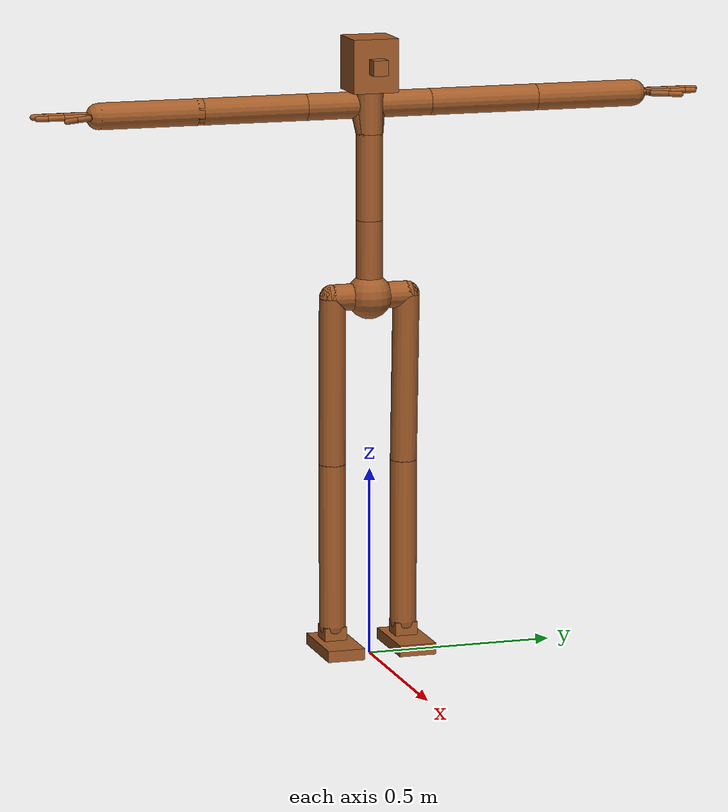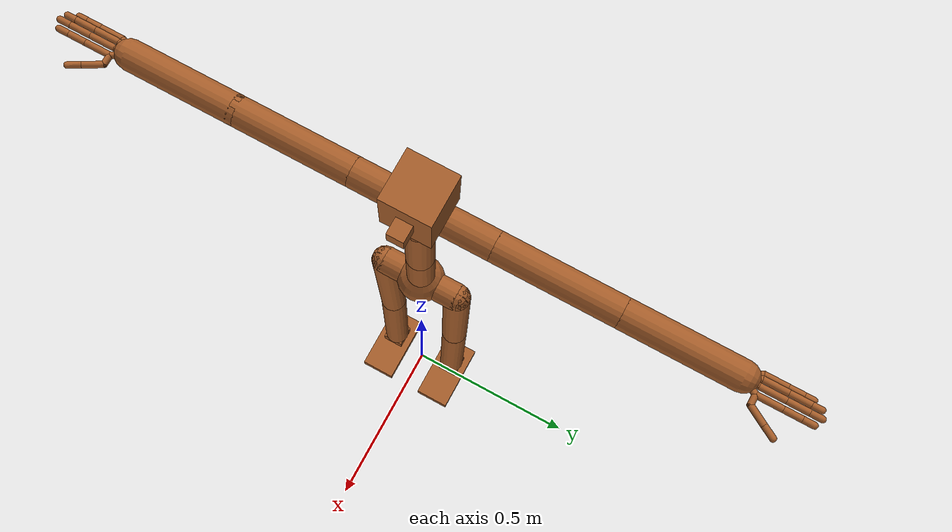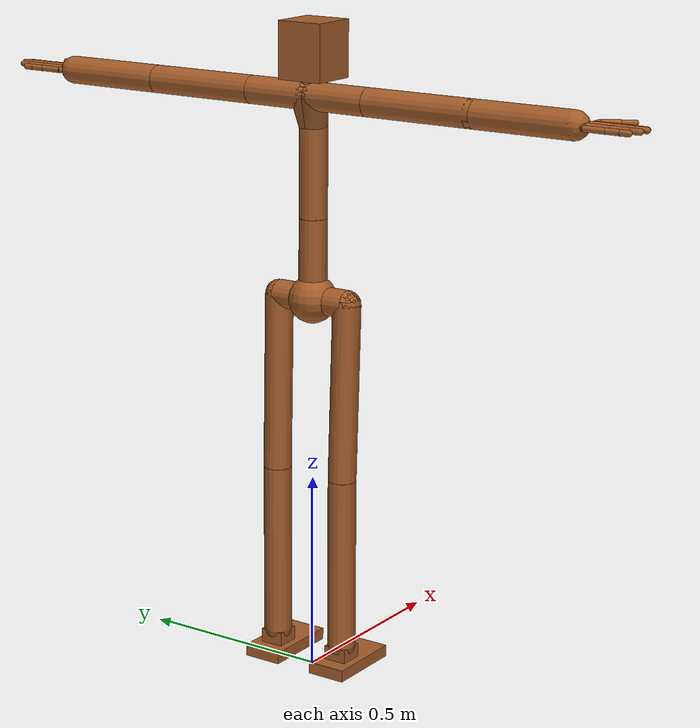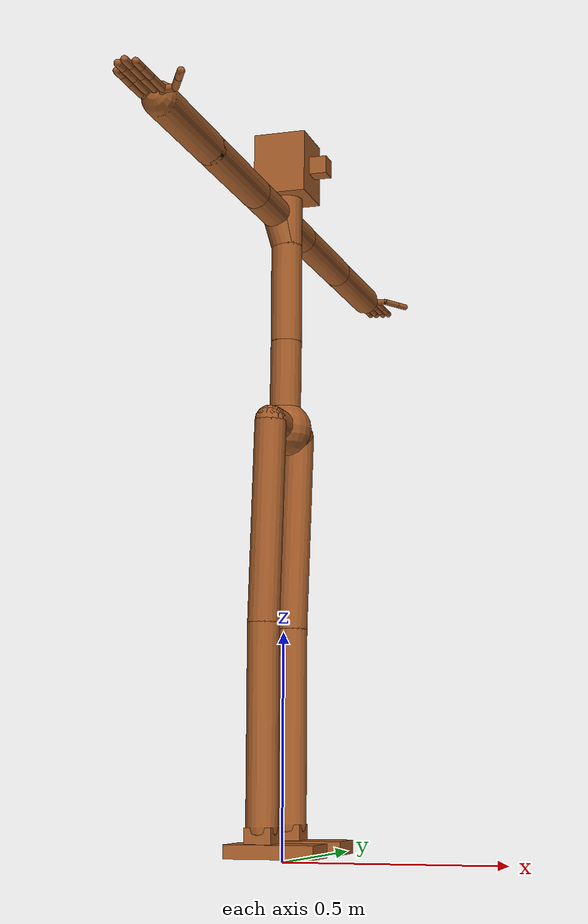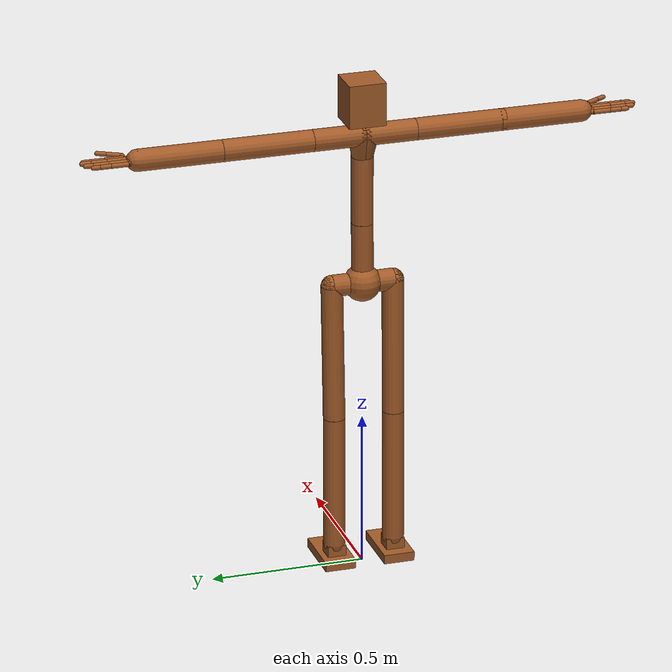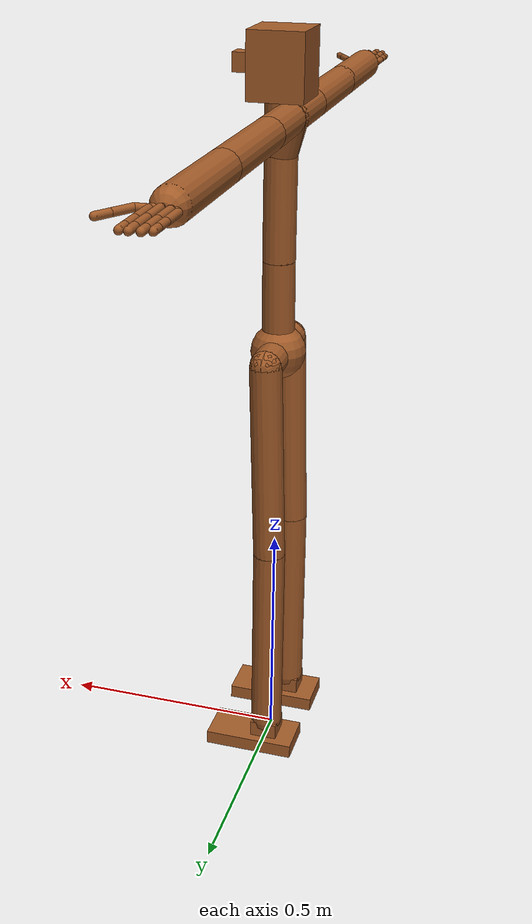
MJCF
<mujoco model="common-rig-h">
    <!--
            Robot Intelligence Lab
            Common Rig (Custom Humanoid) model

            @ Contact us : taemoon-jeong (motor_moon94@korea.ac.kr)
    -->
    <compiler coordinate="local" inertiafromgeom="true" angle="radian"/>

    <default>
        <joint limited="true" damping="1" armature="0"/>
        <geom contype="1" condim="3" margin="0.001" solref=".02 1" solimp=".8 .8 .01" material="matgeom"/>
        <motor ctrlrange="-.4 .4" ctrllimited="true"/>

        <default class="hand">
        	<joint limited="true"/>
            <position ctrllimited="true" kp="1"/>
		</default>
    </default>

    <option timestep="0.005" iterations="50" tolerance="1e-10" solver="Newton" jacobian="dense" cone="pyramidal"/>
    <size nconmax="50" njmax="200" nstack="10000"/>

    <visual>
        <map force="0.1" zfar="30"/>
        <rgba haze="0.15 0.25 0.35 1"/>
        <quality shadowsize="2048"/>
        <global offwidth="800" offheight="800"/>
    </visual>

    <asset>
        <texture name="texgeom" type="cube" builtin="flat" mark="cross" width="127" height="1278"
            rgb1="0.8 0.6 0.4" rgb2="0.8 0.6 0.4" markrgb="1 1 1" random="0.01"/>
        <material name="matgeom" texture="texgeom" texuniform="true" rgba="0.8 0.6 0.4 1.0"/>
    </asset>

    <worldbody>

        <body name="base" pos="0 0 0.960348">
            <freejoint name="base"/>
            <geom name="base" type="sphere" pos="0 0 0" size="0.06"/>
            <body name="torso" pos="0 0 0" euler="0 0 0">
                <geom name="root2spine" type="capsule" fromto="0 0 0 0.00194939 0 0.2017038"  size="0.035" density="2226"/>
                <joint name="root1" type="hinge" pos="0 0 0" axis="1 0 0" range="-0.872222 0.872222" damping="60" stiffness="600" armature="0.02" />
                <joint name="root2" type="hinge" pos="0 0 0" axis="0 1 0" range="-0.523333 2.616667" damping="60" stiffness="600" armature="0.02" />
                <joint name="root3" type="hinge" pos="0 0 0" axis="0 0 1" range="-1.395556 1.395556" damping="60" stiffness="600" armature="0.02" />
                <body name="spine" pos="0.00194939 0 0.2017038" euler="0 0 0">
                    <geom name="spine2neck" type="capsule" fromto="0 0 0 0 0 0.2263381"  size="0.035" density="2226"/>
                    <joint name="spine" type="hinge" pos="0 0 0" axis="0 1 0" range="-0.436111 0.785" damping="60" stiffness="600" armature="0.02" />
                    <joint name="spinex" type="hinge" pos="0 0 0" axis="1 0 0" range="-0.436111 0.785" damping="60" stiffness="600" armature="0.02"/>
                    <joint name="spinez" type="hinge" pos="0 0 0" axis="0 0 1" range="-0.436111 0.785" damping="60" stiffness="600" armature="0.02"/>
                    <body name="neck" pos="0 0 0.2263381" euler="0 0 0">
                        <geom name="neck2rclavicle" type="capsule" fromto="0 0 0 -0.0182683 -0.0119726 0.0730251"  size="0.035"/>
                        <geom name="neck2lclavicle" type="capsule" fromto="0 0 0 -0.0182683 0.0119726 0.0730251"  size="0.035"/>
                        <geom name="neck2head" type="capsule" fromto="0 0 0 0 0 0.1817364"  size="0.035"/>
                        <body name="right_clavicle" pos="-0.0182683 -0.0119726 0.0730251" euler="0 0 0">
                            <geom name="rclavicle2rshoulder" type="capsule" fromto="0 0 0 0 -0.155151 0"  size="0.035"/>
                            <joint name="rc" type="hinge" pos="0 0 0" axis="1 0 0" range="-0.261793 0.261793" damping="60" stiffness="600" armature="0.02"/>
                            <body name="right_shoulder" pos="0 -0.155151 0" euler="0 0 0">
                                <geom name="rshoulder2relbow" type="capsule" fromto="0 0 0 0 -0.291422 0"  size="0.035"/>
                                <joint name="rs1" type="hinge" pos="0 0 0" axis="1 0 0" range="-2.006111 2.006111" stiffness="200" damping="20" armature="0.0068" />
                                <joint name="rs2" type="hinge" pos="0 0 0" axis="0 0 1" range="-1.57 3.141592" stiffness="200" damping="20" armature="0.0051" />
                                <joint name="rs3" type="hinge" pos="0 0 0" axis="0 1 0" range="-3.141592 3.141592" stiffness="200" damping="20" armature="0.0051"/>
                                <body name="right_elbow" pos="0 -0.2768 0" euler="0 0 0">
                                    <geom name="relbow2rwrist" type="capsule" fromto="0 0 0 0 -0.270311 0"  size="0.035"/>
                                    <joint name="re" type="hinge" pos="0 0 0" axis="0 0 1" range="0.01 2.61666666667" stiffness="150" damping="15" armature="0.0028"/>
                                    <body name="right_wrist" pos="0 -0.270311 0" euler="0 0 0">
                                        <geom name="rhand2rmetatwo" type="capsule" fromto="0 0 0 0.0227850 -0.0363963 0.0030774" size="0.0075"/>
                                        <geom name="rhand2rmetathree" type="capsule" fromto="0 0 0 0.0043230 -0.0354591 0.0053477" size="0.0075"/>
                                        <geom name="rhand2rmetafour" type="capsule" fromto="0 0 0 -0.0121556 -0.0357189 0.0033833" size="0.0075"/>
                                        <geom name="rhand2rmetafive" type="capsule" fromto="0 0 0 -0.023199 -0.0339833 -0.0007049" size="0.0075"/>
                                        <joint name="rw1" type="hinge" pos="0 0 0" axis="0 1 0" range="-3.141592 3.141592" damping="5" stiffness="50" armature="0.02"/>
                                        <joint name="rw2" type="hinge" pos="0 0 0" axis="0 0 1" range="-3.141592 3.141592" damping="5" stiffness="50" armature="0.02"/>
                                        <joint name="rw3" type="hinge" pos="0 0 0" axis="1 0 0" range="-3.141592 3.141592" damping="5" stiffness="50" armature="0.02"/>
                                        <body name="rh_meta_2" pos="0.0227850 -0.0363963 0.0030774" euler="0 0 0">
                                            <geom name="rmetatwo2rproxtwo" type="capsule" fromto="0 0 0 0 -0.0605478 0" size="0.0075"/>
                                            <joint name="rh_2_meta" type="hinge" pos="0 0 0" axis="1 0 0" range="0.01 1.570796" damping="5" stiffness="50" armature="0.02"/>
                                                <body name="rh_prox_2" pos="0 -0.0605478 0" euler="0 0 0">
                                                    <geom name="rproxtwo2rmedtwo" type="capsule" fromto="0 0 0 0 -0.0420938 0" size="0.0075"/>
                                                    <joint name="rh_2_prox" type="hinge" pos="0 0 0" axis="1 0 0" range="0.01 1.570796" damping="5" stiffness="50" armature="0.02"/>
                                                        <body name="rh_med_2" pos="0 -0.0420938 0" euler="0 0 0">
                                                            <geom name="rmedtwo2rdisttwo" type="capsule" fromto="0 0 0 0 -0.0261978 0" size="0.0075"/>
                                                            <joint name="rh_2_med" type="hinge" pos="0 0 0" axis="1 0 0" range="0.01 1.570796" damping="5" stiffness="50" armature="0.02"/>
                                                                <body name="rh_dist_2" pos="0 -0.0261978 0" euler="0 0 0"/>
                                                        </body>
                                                </body>
                                        </body>
                                        <body name="rh_abd_2" pos="0.0227850 -0.0363963 0.0030774" euler="0 0 0">
                                            <joint name="rh_2_abd" type="hinge" pos="0 0 0" axis="0 1 0" range="0.01 1.570796" damping="5" stiffness="50" armature="0.02"/>
                                                <geom name="rmetatwo2rmetaone" type="capsule" fromto="0 0 0 0.023986 0 0" size="0.0075"/>
                                                <body name="rh_meta_1" pos="0.023986 0 0" euler="0 0 0.523599">
                                                    <geom name="rmetaone2rproxone" type="capsule" fromto="0 0 0 0 -0.0472361 0" size="0.0075"/>
                                                    <joint name="rh_1_meta" type="hinge" pos="0 0 0" axis="0 0 1" range="-1.570796 -0.01" damping="5" stiffness="50" armature="0.02"/>
                                                        <body name="rh_prox_1" pos="0 -0.0472361 0" euler="0 0 0">
                                                            <geom name="rproxone2rdistone" type="capsule" fromto="0 0 0 0 -0.0310265 0" size="0.0075"/>
                                                            <joint name="rh_1_prox" type="hinge" pos="0 0 0" axis="0 0 1" range="-1.047197 -0.01" damping="5" stiffness="50" armature="0.02"/>
                                                                <body name="rh_dist_1" pos="0 -0.0310265 0" euler="0 0 0"/>
                                                        </body>
                                                </body>
                                        </body>
                                        <body name="rh_meta_3" pos="0.0043230 -0.0354591 0.0053477" euler="0 0 0">
                                            <geom name="rmetathree2rproxthree" type="capsule" fromto="0 0 0 0 -0.0599018 0" size="0.0075"/>
                                            <joint name="rh_3_meta" type="hinge" pos="0 0 0" axis="1 0 0" range="0.01 1.570796" damping="5" stiffness="50" armature="0.02"/>
                                                <body name="rh_prox_3" pos="0 -0.0599018 0" euler="0 0 0">
                                                    <geom name="rproxthree2rmedthree" type="capsule" fromto="0 0 0 0 -0.0507048 0" size="0.0075"/>
                                                    <joint name="rh_3_prox" type="hinge" pos="0 0 0" axis="1 0 0" range="0.01 1.570796" damping="5" stiffness="50" armature="0.02"/>
                                                        <body name="rh_med_3" pos="0 -0.0507048 0" euler="0 0 0">
                                                            <geom name="rmedthree2rdistthree" type="capsule" fromto="0 0 0 0 -0.0275057 0" size="0.0075"/>
                                                            <joint name="rh_3_med" type="hinge" pos="0 0 0" axis="1 0 0" range="0.01 1.570796" damping="5" stiffness="50" armature="0.02"/>
                                                                <body name="rh_dist_3" pos="0 -0.0275057 0" euler="0 0 0"/>
                                                        </body>
                                                </body>
                                        </body>
                                        <body name="rh_meta_4" pos="-0.0121556 -0.0357189 0.0033833" euler="0 0 0">
                                            <geom name="rmetafour2rproxfour" type="capsule" fromto="0 0 0 0 -0.0578554 0" size="0.0075"/>
                                            <joint name="rh_4_meta" type="hinge" pos="0 0 0" axis="1 0 0" range="0.01 1.570796" damping="5" stiffness="50" armature="0.02"/>
                                                <body name="rh_prox_4" pos="0 -0.0578554 0" euler="0 0 0">
                                                    <geom name="rproxfour2rmedfour" type="capsule" fromto="0 0 0 0 -0.0495246 0" size="0.0075"/>
                                                    <joint name="rh_4_prox" type="hinge" pos="0 0 0" axis="1 0 0" range="0.01 1.570796" damping="5" stiffness="50" armature="0.02"/>
                                                        <body name="rh_med_4" pos="0 -0.0495246 0" euler="0 0 0">
                                                            <geom name="rmedfour2rdistfour" type="capsule" fromto="0 0 0 0 -0.0226809 0" size="0.0075"/>
                                                            <joint name="rh_4_med" type="hinge" pos="0 0 0" axis="1 0 0" range="0.01 1.570796" damping="5" stiffness="50" armature="0.02"/>
                                                                <body name="rh_dist_4" pos="0 -0.0226809 0" euler="0 0 0"/>
                                                        </body>
                                                </body>
                                        </body>
                                        <body name="rh_meta_5" pos="-0.023199 -0.0339833 -0.0007049" euler="0 0 0">
                                            <geom name="rmetafive2rproxfive" type="capsule" fromto="0 0 0 0 -0.0542941 0" size="0.0075 "/>
                                            <joint name="rh_5_meta" type="hinge" pos="0 0 0" axis="1 0 0" range="0.01 1.570796" damping="5" stiffness="50" armature="0.02"/>
                                                <body name="rh_prox_5" pos="0 -0.0542941 0" euler="0 0 0">
                                                    <geom name="rproxfive2rmedfive" type="capsule" fromto="0 0 0 0 -0.0350421 0" size="0.0075"/>
                                                    <joint name="rh_5_prox" type="hinge" pos="0 0 0" axis="1 0 0" range="0.01 1.570796" damping="5" stiffness="50" armature="0.02"/>
                                                        <body name="rh_med_5" pos="0 -0.0350421 0" euler="0 0 0">
                                                            <geom name="rmedfive2rdistfive" type="capsule" fromto="0 0 0 0 -0.0211006 0" size="0.0075"/>
                                                            <joint name="rh_5_med" type="hinge" pos="0 0 0" axis="1 0 0" range="0.01 1.570796" damping="5" stiffness="50" armature="0.02"/>
                                                                <body name="rh_dist_5" pos="0 -0.0211006 0" euler="0 0 0"/>
                                                        </body>
                                                </body>
                                        </body>
                                    </body>
                                </body>
                            </body>
                        </body>
                        <body name="left_clavicle" pos="-0.0182683 0.0119726 0.0730251" euler="0 0 0">
                            <geom name="lclavicle2lshoulder" type="capsule" fromto="0 0 0 0 0.155151 0"  size="0.035"/>
                            <joint name="lc" type="hinge" pos="0 0 0" axis="1 0 0" range="-0.261793 0.261793" damping="60" stiffness="600" armature="0.02"/>
                            <body name="left_shoulder" pos="0 0.155151 0" euler="0 0 0">
                                <geom name="lshoulder2lelbow" type="capsule" fromto="0 0 0 0 0.291422 0"  size="0.035" />
                                <joint name="ls1" type="hinge" pos="0 0 0" axis="1 0 0" range="-2.006111 2.006111" stiffness="200" damping="20" armature="0.0068" />
                                <joint name="ls2" type="hinge" pos="0 0 0" axis="0 0 1" range="-3.141592 1.57" stiffness="200" damping="20" armature="0.0051" />
                                <joint name="ls3" type="hinge" pos="0 0 0" axis="0 1 0" range="-3.141592 3.141592" stiffness="200" damping="20" armature="0.0051" />
                                <body name="left_elbow" pos="0 0.291422 0" euler="0 0 0">
                                    <geom name="lelbow2lwrist" type="capsule" fromto="0 0 0 0 0.270311 0"  size="0.035" />
                                    <joint name="le" type="hinge" pos="0 0 0" axis="0 0 1" range="-2.61666666667 -0.01" stiffness="150" damping="15" armature="0.0028" />
                                    <body name="left_wrist" pos="0 0.270311 0" euler="0 0 0">
                                        <geom name="lhand2lmetatwo" type="capsule" fromto="0 0 0 0.0227850 0.0363963 0.0030774" size="0.0075"/>
                                        <geom name="lhand2lmetathree" type="capsule" fromto="0 0 0 0.0043230 0.0354591 0.0053477" size="0.0075"/>
                                        <geom name="lhand2lmetafour" type="capsule" fromto="0 0 0 -0.0121556 0.0357189 0.0033833" size="0.0075"/>
                                        <geom name="lhand2lmetafive" type="capsule" fromto="0 0 0 -0.023199 0.0339833 -0.0007049" size="0.0075"/>
                                        <joint name="lw1" type="hinge" pos="0 0 0" axis="0 1 0" range="-3.141592 3.141592" damping="5" stiffness="50" armature="0.02" />
                                        <joint name="lw2" type="hinge" pos="0 0 0" axis="0 0 1" range="-3.141592 3.141592" damping="5" stiffness="50" armature="0.02" />
                                        <joint name="lw3" type="hinge" pos="0 0 0" axis="1 0 0" range="-3.141592 3.141592" damping="5" stiffness="50" armature="0.02" />
                                        <body name="lh_meta_2" pos="0.0227850 0.0363963 0.0030774" euler="0 0 0">
                                            <geom name="lmetatwo2lproxtwo" type="capsule" fromto="0 0 0 0 0.0605478 0" size="0.0075"/>
                                            <joint name="lh_2_meta" type="hinge" pos="0 0 0" axis="1 0 0" range="-1.570796 -0.01" damping="5" stiffness="50" armature="0.02"/>
                                                <body name="lh_prox_2" pos="0 0.0605478 0" euler="0 0 0">
                                                    <geom name="lproxtwo2lmedtwo" type="capsule" fromto="0 0 0 0 0.0420938 0" size="0.0075"/>
                                                    <joint name="lh_2_prox" type="hinge" pos="0 0 0" axis="1 0 0" range="-1.570796 -0.01" damping="5" stiffness="50" armature="0.02"/>
                                                        <body name="lh_med_2" pos="0 0.0420938 0" euler="0 0 0">
                                                            <geom name="lmedtwo2ldisttwo" type="capsule" fromto="0 0 0 0 0.0261978 0" size="0.0075"/>
                                                            <joint name="lh_2_med" type="hinge" pos="0 0 0" axis="1 0 0" range="-1.570796 -0.01" damping="5" stiffness="50" armature="0.02"/>
                                                                <body name="lh_dist_2" pos="0 0.0261978 0" euler="0 0 0"/>
                                                        </body>
                                                </body>
                                        </body>
                                        <body name="lh_abd_2" pos="0.0227850 0.0363963 0.0030774" euler="0 0 0">
                                            <joint name="lh_2_abd" type="hinge" pos="0 0 0" axis="0 1 0" range="0.01 1.570796" damping="5" stiffness="50" armature="0.02"/>
                                                <geom name="lmetatwo2lmetaone" type="capsule" fromto="0 0 0 0.023986 0 0" size="0.0075"/>
                                                <body name="lh_meta_1" pos="0.023986 0 0" euler="0 0 -0.523599">
                                                    <geom name="lmetaone2lproxone" type="capsule" fromto="0 0 0 0 0.0472361 0" size="0.0075"/>
                                                    <joint name="lh_1_meta" type="hinge" pos="0 0 0" axis="0 0 1" range="0.01 1.570796" damping="5" stiffness="50" armature="0.02"/>
                                                        <body name="lh_prox_1" pos="0 0.0472361 0" euler="0 0 0">
                                                            <geom name="lproxone2ldistone" type="capsule" fromto="0 0 0 0 0.0310265 0" size="0.0075"/>
                                                            <joint name="lh_1_prox" type="hinge" pos="0 0 0" axis="0 0 1" range="0.01 1.047197" damping="5" stiffness="50" armature="0.02"/>
                                                                <body name="lh_dist_1" pos="0 0.0310265 0" euler="0 0 0"/>
                                                        </body>
                                                </body>
                                        </body>
                                        <body name="lh_meta_3" pos="0.0043230 0.0354591 0.0053477" euler="0 0 0">
                                            <geom name="lmetathree2lproxthree" type="capsule" fromto="0 0 0 0 0.0599018 0" size="0.0075"/>
                                            <joint name="lh_3_meta" type="hinge" pos="0 0 0" axis="1 0 0" range="-1.570796 -0.01" damping="5" stiffness="50" armature="0.02"/>
                                                <body name="lh_prox_3" pos="0 0.0599018 0" euler="0 0 0">
                                                    <geom name="lproxthree2lmedthree" type="capsule" fromto="0 0 0 0 0.0507048 0" size="0.0075"/>
                                                    <joint name="lh_3_prox" type="hinge" pos="0 0 0" axis="1 0 0" range="-1.570796 -0.01" damping="5" stiffness="50" armature="0.02"/>
                                                        <body name="lh_med_3" pos="0 0.0507048 0" euler="0 0 0">
                                                            <geom name="lmedthree2ldistthree" type="capsule" fromto="0 0 0 0 0.0275057 0" size="0.0075"/>
                                                            <joint name="lh_3_med" type="hinge" pos="0 0 0" axis="1 0 0" range="-1.570796 -0.01" damping="5" stiffness="50" armature="0.02"/>
                                                                <body name="lh_dist_3" pos="0 0.0275057 0" euler="0 0 0"/>
                                                        </body>
                                                </body>
                                        </body>
                                        <body name="lh_meta_4" pos="-0.0121556 0.0357189 0.0033833" euler="0 0 0">
                                            <geom name="lmetafour2lproxfour" type="capsule" fromto="0 0 0 0 0.0578554 0" size="0.0075"/>
                                            <joint name="lh_4_meta" type="hinge" pos="0 0 0" axis="1 0 0" range="-1.570796 -0.01" damping="5" stiffness="50" armature="0.02"/>
                                                <body name="lh_prox_4" pos="0 0.0578554 0" euler="0 0 0">
                                                    <geom name="lproxfour2lmedfour" type="capsule" fromto="0 0 0 0 0.0495246 0" size="0.0075"/>
                                                    <joint name="lh_4_prox" type="hinge" pos="0 0 0" axis="1 0 0" range="-1.570796 -0.01" damping="5" stiffness="50" armature="0.02"/>
                                                        <body name="lh_med_4" pos="0 0.0495246 0" euler="0 0 0">
                                                            <geom name="lmedfour2ldistfour" type="capsule" fromto="0 0 0 0 0.0226809 0" size="0.0075"/>
                                                            <joint name="lh_4_med" type="hinge" pos="0 0 0" axis="1 0 0" range="-1.570796 -0.01" damping="5" stiffness="50" armature="0.02"/>
                                                                <body name="lh_dist_4" pos="0 0.0226809 0" euler="0 0 0"/>
                                                        </body>
                                                </body>
                                        </body>
                                        <body name="lh_meta_5" pos="-0.023199 0.0339833 -0.0007049" euler="0 0 0">
                                            <geom name="lmetafive2lproxfive" type="capsule" fromto="0 0 0 0 0.0542941 0" size="0.0075"/>
                                            <joint name="lh_5_meta" type="hinge" pos="0 0 0" axis="1 0 0" range="-1.570796 -0.01" damping="5" stiffness="50" armature="0.02"/>
                                                <body name="lh_prox_5" pos="0 0.0542941 0" euler="0 0 0">
                                                    <geom name="lproxfive2lmedfive" type="capsule" fromto="0 0 0 0 0.0350421 0" size="0.0075"/>
                                                    <joint name="lh_5_prox" type="hinge" pos="0 0 0" axis="1 0 0" range="-1.570796 -0.01" damping="5" stiffness="50" armature="0.02"/>
                                                        <body name="lh_med_5" pos="0 0.0350421 0" euler="0 0 0">
                                                            <geom name="lmedfive2ldistfive" type="capsule" fromto="0 0 0 0 0.0211006 0" size="0.0075"/>
                                                            <joint name="lh_5_med" type="hinge" pos="0 0 0" axis="1 0 0" range="-1.570796 -0.01" damping="5" stiffness="50" armature="0.02"/>
                                                                <body name="lh_dist_5" pos="0 0.0211006 0" euler="0 0 0"/>
                                                        </body>
                                                </body>
                                        </body>
                                    </body>
                                </body>
                            </body>
                        </body>
                        <body name="head" pos="0 0 0.1817364" euler="0 0 0">
                            <geom name="head" type="box" pos="0 0 0" size="0.06 0.06 0.07" />
                            <geom name="nose" type="box" pos="0.05 0 0" size="0.05 0.02 0.02" />
                            <joint name="head1" type="hinge" pos="0 0 0" axis="1 0 0" range="-1.57 1.57" damping="5" stiffness="50" armature="0.02" />
                            <joint name="head2" type="hinge" pos="0 0 0" axis="0 1 0" range="-1.57 1.57" damping="5" stiffness="50" armature="0.02" />
                            <joint name="head3" type="hinge" pos="0 0 0" axis="0 0 1" range="-1.57 1.57" damping="5" stiffness="50" armature="0.02" />
                        </body>
                    </body>
                </body>
            </body>
            <body name="right_leg" pos="0 0 0" euler="0 0 0">
                <geom name="base2rpelvis" type="capsule" fromto="0 0 0 0 -0.100371 0"  size="0.035" />
                <body name="right_pelvis" pos="0 -0.100371 0" euler="0 0 0">
                    <geom name="rpelvis2rknee" type="capsule" fromto="0 0 0 -0.013579 0.00242305 -0.445198"  size="0.035" />
                    <joint name="rp1" type="hinge" pos="0 0 0" axis="1 0 0" range="-1.57 0.785" damping="30" stiffness="900" armature="0.01" />
                    <joint name="rp2" type="hinge" pos="0 0 0" axis="0 1 0" range="-3.141592 2.267778" damping="30" stiffness="900" armature="0.01" />
                    <joint name="rp3" type="hinge" pos="0 0 0" axis="0 0 1" range="-0.52333333333 0.52333333333" damping="30" stiffness="900" armature="0.01" />
                    <body name="right_knee" pos="-0.013579 0.00242305 -0.445198" euler="0 0 0">
                        <geom name="rknee2rankle" type="capsule" fromto="0 0 0 0 0 -0.436307"  size="0.035" />
                        <joint name="rk" type="hinge" pos="0 0 0" axis="0 1 0" range="0.0175 2.0944" damping="30" stiffness="900" armature="0.0060" />
                        <body name="right_ankle" pos="0 0 -0.436307" euler="0 0 0">
                            <geom name="rankle" type="box" pos="0 0 -0.025" size="0.03 0.03 0.025" />
                            <geom name="rfoot" type="box" pos="0.03 0 -0.05" size="0.1 0.05 0.015" />
                            <joint name="ra1" type="hinge" pos="0 0 0" axis="0 1 0" range="-1.57 0.697778" stiffness="600" damping="20" armature="0.0008" />
                            <joint name="ra2" type="hinge" pos="0 0 0" axis="1 0 0" range="-0.261667 0.261667" stiffness="600" damping="20" armature="0.0006" />
                            <joint name="ra3" type="hinge" pos="0 0 0" axis="0 0 1" range="-0.52333333333 0.52333333333" stiffness="600" damping="20" armature="0.0006" />
                        </body>
                    </body>
                </body>
            </body>
            <body name="left_leg" pos="0 0 0" euler="0 0 0">
                <geom name="base2lpelvis" type="capsule" fromto="0 0 0 0 0.100371 0"  size="0.035" />
                <body name="left_pelvis" pos="0 0.100371 0" euler="0 0 0">
                    <geom name="lpelvis2lknee" type="capsule" fromto="0 0 0 -0.013579 -0.00242347 -0.445198"  size="0.035" />
                    <joint name="lp1" type="hinge" pos="0 0 0" axis="1 0 0" range="-0.785 1.57" damping="30" stiffness="900" armature="0.01" />
                    <joint name="lp2" type="hinge" pos="0 0 0" axis="0 1 0" range="-3.141592 2.267778" damping="30" stiffness="900" armature="0.01" />
                    <joint name="lp3" type="hinge" pos="0 0 0" axis="0 0 1" range="-0.52333333333 0.52333333333" damping="30" stiffness="900" armature="0.01" />
                    <body name="left_knee" pos="-0.013579 -0.00242347 -0.445198" euler="0 0 0">
                        <geom name="lknee2lankle" type="capsule" fromto="0 0 0 0 0 -0.436307"  size="0.035" />
                        <joint name="lk" type="hinge" pos="0 0 0" axis="0 1 0" range="0.0175 2.0944" damping="30" stiffness="900" armature="0.0060" />
                        <body name="left_ankle" pos="0 0 -0.436307" euler="0 0 0">
                            <geom name="lankle" type="box" pos="0 0 -0.025" size="0.03 0.03 0.025" />
                            <geom name="lfoot" type="box" pos="0.03 0 -0.05" size="0.1 0.05 0.015" />
                            <joint name="la1" type="hinge" pos="0 0 0" axis="0 1 0" range="-1.57 0.697778" stiffness="600" damping="20" armature="0.0008" />
                            <joint name="la2" type="hinge" pos="0 0 0" axis="1 0 0" range="-0.261667 0.261667" stiffness="600" damping="20" armature="0.0006" />
                            <joint name="la3" type="hinge" pos="0 0 0" axis="0 0 1" range="-0.52333333333 0.52333333333" stiffness="600" damping="20" armature="0.0006" />
                        </body>
                    </body>
                </body>
            </body>
        </body>
    </worldbody>

    <actuator>
        <motor name="root1"       gear="200" joint="root1" />
        <motor name="root2"       gear="200" joint="root2" />
        <motor name="root3"       gear="200" joint="root3" />
        <motor name="spine"       gear="200" joint="spine" />
        <motor name="rs1"         gear="100" joint="rs1" />
        <motor name="rs2"         gear="100" joint="rs2" />
        <motor name="rs3"         gear="100" joint="rs3" />
        <motor name="re"          gear="200" joint="re" />
        <motor name="rw1"         gear="100" joint="rw1" />
        <motor name="rw2"         gear="100" joint="rw2" />
        <motor name="rw3"         gear="100" joint="rw3" />
        <motor name="ls1"         gear="100" joint="ls1" />
        <motor name="ls2"         gear="100" joint="ls2" />
        <motor name="ls3"         gear="100" joint="ls3" />
        <motor name="le"          gear="200" joint="le" />
        <motor name="lw1"         gear="100" joint="lw1" />
        <motor name="lw2"         gear="100" joint="lw2" />
        <motor name="lw3"         gear="100" joint="lw3" />
        <motor name="rp1"         gear="600" joint="rp1" />
        <motor name="rp2"         gear="200" joint="rp2" />
        <motor name="rp3"         gear="200" joint="rp3" />
        <motor name="rk"          gear="400" joint="rk" />
        <motor name="ra1"         gear="100" joint="ra1" />
        <motor name="ra2"         gear="100" joint="ra2" />
        <motor name="ra3"         gear="100" joint="ra3" />
        <motor name="lp1"         gear="600" joint="lp1" />
        <motor name="lp2"         gear="200" joint="lp2" />
        <motor name="lp3"         gear="200" joint="lp3" />
        <motor name="lk"          gear="400" joint="lk" />
        <motor name="la1"         gear="100" joint="la1" />
        <motor name="la2"         gear="100" joint="la2" />
        <motor name="la3"         gear="100" joint="la3" />
        <motor name="head1"       gear="200" joint="head1" />
        <motor name="head2"       gear="200" joint="head2" />
        <motor name="head3"       gear="200" joint="head3" />

        <motor name="rc"         gear="100" joint="rc" />
        <motor name="lc"         gear="100" joint="lc" />

        <!-- right hand -->
        <position name="rh_1_meta"  class="hand"  joint="rh_1_meta"  ctrlrange="0 180"/>
        <position name="rh_2_abd"   class="hand"  joint="rh_2_abd"   ctrlrange="0 180"/>
        <position name="rh_2_prox"  class="hand"  joint="rh_2_prox"  ctrlrange="0 180"/>
        <position name="rh_3_prox"  class="hand"  joint="rh_3_prox"  ctrlrange="0 180"/>
        <position name="rh_4_prox"  class="hand"  joint="rh_4_prox"  ctrlrange="0 180"/>
        <position name="rh_5_prox"  class="hand"  joint="rh_5_prox"  ctrlrange="0 180"/>

        <!-- left hand -->
        <position name="lh_1_meta"  class="hand"  joint="lh_1_meta"  ctrlrange="-180 0"/>
        <position name="lh_2_abd"   class="hand"  joint="lh_2_abd"   ctrlrange="-180 0"/>
        <position name="lh_2_prox"  class="hand"  joint="lh_2_prox"  ctrlrange="-180 0"/>
        <position name="lh_3_prox"  class="hand"  joint="lh_3_prox"  ctrlrange="-180 0"/>
        <position name="lh_4_prox"  class="hand"  joint="lh_4_prox"  ctrlrange="-180 0"/>
        <position name="lh_5_prox"  class="hand"  joint="lh_5_prox"  ctrlrange="-180 0"/>

    </actuator>

    <!-- exclude -->
    <contact>
        <exclude body1="neck" body2="right_shoulder"/>
        <exclude body1="spine" body2="right_shoulder"/>
        <exclude body1="right_shoulder" body2="right_elbow"/>
        <exclude body1="right_elbow" body2="right_wrist"/>

        <exclude body1="neck" body2="left_shoulder"/>
        <exclude body1="spine" body2="left_shoulder"/>
        <exclude body1="left_shoulder" body2="left_elbow"/>
        <exclude body1="left_elbow" body2="left_wrist"/>

        <exclude body1="neck" body2="spine"/>
        <exclude body1="spine" body2="torso"/>
        <exclude body1="torso" body2="base"/>

        <exclude body1="torso" body2="right_pelvis"/>
        <exclude body1="right_leg" body2="base"/>
        <exclude body1="right_leg" body2="torso"/>
        <exclude body1="right_leg" body2="right_pelvis"/>
        <exclude body1="right_pelvis" body2="right_knee"/>
        <exclude body1="right_knee" body2="right_ankle"/>

        <exclude body1="right_leg" body2="left_leg"/>

        <exclude body1="torso" body2="left_pelvis"/>
        <exclude body1="left_leg" body2="base"/>
        <exclude body1="left_leg" body2="torso"/>
        <exclude body1="left_leg" body2="left_pelvis"/>
        <exclude body1="left_pelvis" body2="left_knee"/>
        <exclude body1="left_knee" body2="left_ankle"/>

        <exclude body1="right_elbow" body2="rh_meta_1"/>
        <exclude body1="right_elbow" body2="rh_meta_2"/>
        <exclude body1="right_elbow" body2="rh_prox_3"/>

        <exclude body1="right_wrist" body2="rh_meta_2"/>
        <exclude body1="right_wrist" body2="rh_meta_3"/>
        <exclude body1="right_wrist" body2="rh_meta_4"/>
        <exclude body1="right_wrist" body2="rh_meta_5"/>
        <exclude body1="rh_meta_2" body2="rh_meta_1"/>

        <exclude body1="rh_meta_1" body2="rh_prox_1"/>
        <exclude body1="rh_prox_1" body2="rh_dist_1"/>

        <exclude body1="rh_meta_2" body2="rh_prox_2"/>
        <exclude body1="rh_prox_2" body2="rh_med_2"/>
        <exclude body1="rh_med_2" body2="rh_dist_2"/>

        <exclude body1="rh_meta_3" body2="rh_prox_3"/>
        <exclude body1="rh_prox_3" body2="rh_med_3"/>
        <exclude body1="rh_med_3" body2="rh_dist_3"/>

        <exclude body1="rh_meta_4" body2="rh_prox_4"/>
        <exclude body1="rh_prox_4" body2="rh_med_4"/>
        <exclude body1="rh_med_4" body2="rh_dist_4"/>

        <exclude body1="rh_meta_5" body2="rh_prox_5"/>
        <exclude body1="rh_prox_5" body2="rh_med_5"/>
        <exclude body1="rh_med_5" body2="rh_dist_5"/>

        <exclude body1="left_elbow" body2="lh_meta_1"/>
        <exclude body1="left_elbow" body2="lh_meta_2"/>
        <exclude body1="left_elbow" body2="lh_prox_3"/>

        <exclude body1="left_wrist" body2="lh_meta_2"/>
        <exclude body1="left_wrist" body2="lh_meta_3"/>
        <exclude body1="left_wrist" body2="lh_meta_4"/>
        <exclude body1="left_wrist" body2="lh_meta_5"/>
        <exclude body1="lh_meta_2" body2="lh_meta_1"/>

        <exclude body1="lh_meta_1" body2="lh_prox_1"/>
        <exclude body1="lh_prox_1" body2="lh_dist_1"/>

        <exclude body1="lh_meta_2" body2="lh_prox_2"/>
        <exclude body1="lh_prox_2" body2="lh_med_2"/>
        <exclude body1="lh_med_2" body2="lh_dist_2"/>

        <exclude body1="lh_meta_3" body2="lh_prox_3"/>
        <exclude body1="lh_prox_3" body2="lh_med_3"/>
        <exclude body1="lh_med_3" body2="lh_dist_3"/>

        <exclude body1="lh_meta_4" body2="lh_prox_4"/>
        <exclude body1="lh_prox_4" body2="lh_med_4"/>
        <exclude body1="lh_med_4" body2="lh_dist_4"/>

        <exclude body1="lh_meta_5" body2="lh_prox_5"/>
        <exclude body1="lh_prox_5" body2="lh_med_5"/>
        <exclude body1="lh_med_5" body2="lh_dist_5"/>
    </contact>

</mujoco>
